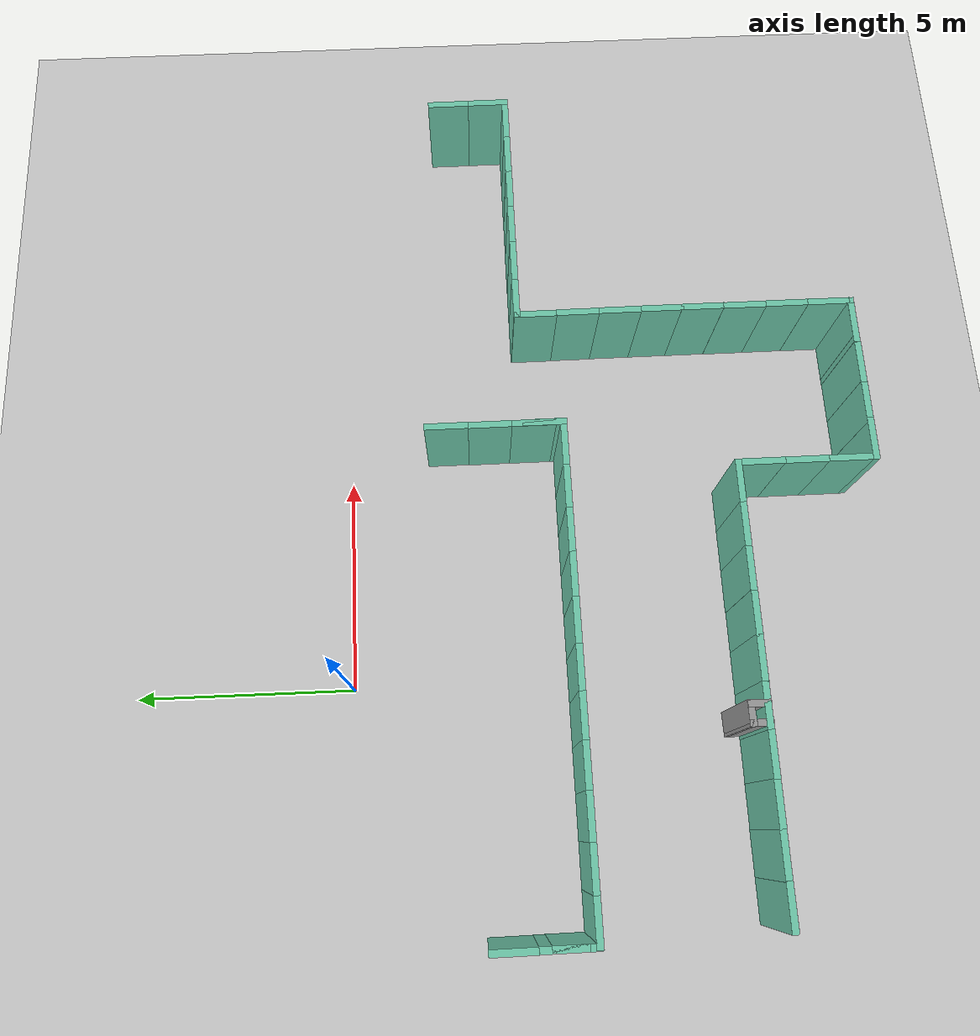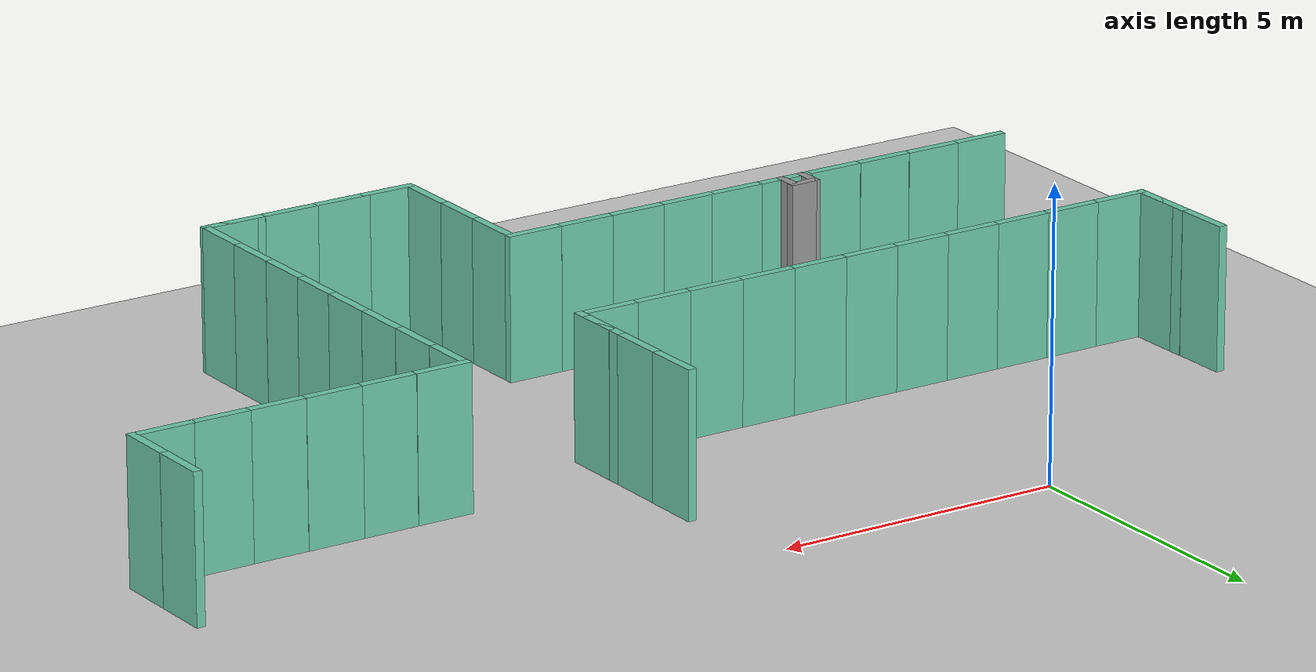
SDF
<sdf version="1.6">
 <world name="default">
  <model name="ground_plane">
   <static>1</static>
   <link name="link">
    <collision name="collision">
     <geometry><plane><normal>0 0 1</normal><size>100 100</size></plane></geometry>
     <surface><friction><ode><mu>100</mu><mu2>50</mu2></ode></friction></surface>
    </collision>
    <visual name="visual">
     <cast_shadows>0</cast_shadows>
     <geometry><plane><normal>0 0 1</normal><size>100 100</size></plane></geometry>
     <material>
      <script><uri>file://media/materials/scripts/gazebo.material</uri><name>Gazebo/Grey</name></script>
     </material>
    </visual>
   </link>
  </model>
  <model name="wall1m_0">
   <pose>5 -5 0 0 -0 0</pose>
   <link name="Wall_2">
    <collision name="Wall_2_Collision">
     <geometry><box><size>1 0.15 2.5</size></box></geometry>
     <pose>0 0 1.25 0 -0 0</pose>
    </collision>
    <visual name="Wall_2_Visual">
     <pose>0 0 1.25 0 -0 0</pose>
     <geometry><box><size>1 0.15 2.5</size></box></geometry>
     <material>
      <script><uri>file://media/materials/scripts/gazebo.material</uri><name>Gazebo/Grey</name></script>
      <ambient>0.435294 0.796078 0.67451 1</ambient>
     </material>
     <meta><layer>0</layer></meta>
    </visual>
   </link>
   <static>1</static>
  </model>
  <model name="wall1m_0_clone">
   <pose>-2 -5 0 0 -0 0</pose>
   <link name="Wall_2">
    <collision name="Wall_2_Collision">
     <geometry><box><size>1 0.15 2.5</size></box></geometry>
     <pose>0 0 1.25 0 -0 0</pose>
    </collision>
    <visual name="Wall_2_Visual">
     <pose>0 0 1.25 0 -0 0</pose>
     <geometry><box><size>1 0.15 2.5</size></box></geometry>
     <material>
      <script><uri>file://media/materials/scripts/gazebo.material</uri><name>Gazebo/Grey</name></script>
      <ambient>0.435294 0.796078 0.67451 1</ambient>
     </material>
     <meta><layer>0</layer></meta>
    </visual>
   </link>
   <static>1</static>
  </model>
  <model name="wall1m_0_clone_0">
   <pose>-1 -5 0 0 -0 0</pose>
   <link name="Wall_2">
    <collision name="Wall_2_Collision">
     <geometry><box><size>1 0.15 2.5</size></box></geometry>
     <pose>0 0 1.25 0 -0 0</pose>
    </collision>
    <visual name="Wall_2_Visual">
     <pose>0 0 1.25 0 -0 0</pose>
     <geometry><box><size>1 0.15 2.5</size></box></geometry>
     <material>
      <script><uri>file://media/materials/scripts/gazebo.material</uri><name>Gazebo/Grey</name></script>
      <ambient>0.435294 0.796078 0.67451 1</ambient>
     </material>
     <meta><layer>0</layer></meta>
    </visual>
   </link>
   <static>1</static>
  </model>
  <model name="wall1m_0_clone_1">
   <pose>0 -5 0 0 -0 0</pose>
   <link name="Wall_2">
    <collision name="Wall_2_Collision">
     <geometry><box><size>1 0.15 2.5</size></box></geometry>
     <pose>0 0 1.25 0 -0 0</pose>
    </collision>
    <visual name="Wall_2_Visual">
     <pose>0 0 1.25 0 -0 0</pose>
     <geometry><box><size>1 0.15 2.5</size></box></geometry>
     <material>
      <script><uri>file://media/materials/scripts/gazebo.material</uri><name>Gazebo/Grey</name></script>
      <ambient>0.435294 0.796078 0.67451 1</ambient>
     </material>
     <meta><layer>0</layer></meta>
    </visual>
   </link>
   <static>1</static>
  </model>
  <model name="wall1m_0_clone_2">
   <pose>1 -5 0 0 -0 0</pose>
   <link name="Wall_2">
    <collision name="Wall_2_Collision">
     <geometry><box><size>1 0.15 2.5</size></box></geometry>
     <pose>0 0 1.25 0 -0 0</pose>
    </collision>
    <visual name="Wall_2_Visual">
     <pose>0 0 1.25 0 -0 0</pose>
     <geometry><box><size>1 0.15 2.5</size></box></geometry>
     <material>
      <script><uri>file://media/materials/scripts/gazebo.material</uri><name>Gazebo/Grey</name></script>
      <ambient>0.435294 0.796078 0.67451 1</ambient>
     </material>
     <meta><layer>0</layer></meta>
    </visual>
   </link>
   <static>1</static>
  </model>
  <model name="wall1m_0_clone_3">
   <pose>2 -5 0 0 -0 0</pose>
   <link name="Wall_2">
    <collision name="Wall_2_Collision">
     <geometry><box><size>1 0.15 2.5</size></box></geometry>
     <pose>0 0 1.25 0 -0 0</pose>
    </collision>
    <visual name="Wall_2_Visual">
     <pose>0 0 1.25 0 -0 0</pose>
     <geometry><box><size>1 0.15 2.5</size></box></geometry>
     <material>
      <script><uri>file://media/materials/scripts/gazebo.material</uri><name>Gazebo/Grey</name></script>
      <ambient>0.435294 0.796078 0.67451 1</ambient>
     </material>
     <meta><layer>0</layer></meta>
    </visual>
   </link>
   <static>1</static>
  </model>
  <model name="wall1m_0_clone_4">
   <pose>3 -5 0 0 -0 0</pose>
   <link name="Wall_2">
    <collision name="Wall_2_Collision">
     <geometry><box><size>1 0.15 2.5</size></box></geometry>
     <pose>0 0 1.25 0 -0 0</pose>
    </collision>
    <visual name="Wall_2_Visual">
     <pose>0 0 1.25 0 -0 0</pose>
     <geometry><box><size>1 0.15 2.5</size></box></geometry>
     <material>
      <script><uri>file://media/materials/scripts/gazebo.material</uri><name>Gazebo/Grey</name></script>
      <ambient>0.435294 0.796078 0.67451 1</ambient>
     </material>
     <meta><layer>0</layer></meta>
    </visual>
   </link>
   <static>1</static>
  </model>
  <model name="wall1m_0_clone_5">
   <pose>4 -5 0 0 -0 0</pose>
   <link name="Wall_2">
    <collision name="Wall_2_Collision">
     <geometry><box><size>1 0.15 2.5</size></box></geometry>
     <pose>0 0 1.25 0 -0 0</pose>
    </collision>
    <visual name="Wall_2_Visual">
     <pose>0 0 1.25 0 -0 0</pose>
     <geometry><box><size>1 0.15 2.5</size></box></geometry>
     <material>
      <script><uri>file://media/materials/scripts/gazebo.material</uri><name>Gazebo/Grey</name></script>
      <ambient>0.435294 0.796078 0.67451 1</ambient>
     </material>
     <meta><layer>0</layer></meta>
    </visual>
   </link>
   <static>1</static>
  </model>
  <model name="wall1m_0_clone_6">
   <pose>-3 -5 0 0 -0 0</pose>
   <link name="Wall_2">
    <collision name="Wall_2_Collision">
     <geometry><box><size>1 0.15 2.5</size></box></geometry>
     <pose>0 0 1.25 0 -0 0</pose>
    </collision>
    <visual name="Wall_2_Visual">
     <pose>0 0 1.25 0 -0 0</pose>
     <geometry><box><size>1 0.15 2.5</size></box></geometry>
     <material>
      <script><uri>file://media/materials/scripts/gazebo.material</uri><name>Gazebo/Grey</name></script>
      <ambient>0.435294 0.796078 0.67451 1</ambient>
     </material>
     <meta><layer>0</layer></meta>
    </visual>
   </link>
   <static>1</static>
  </model>
  <model name="wall1m_0_clone_7">
   <pose>-4 -5 0 0 -0 0</pose>
   <link name="Wall_2">
    <collision name="Wall_2_Collision">
     <geometry><box><size>1 0.15 2.5</size></box></geometry>
     <pose>0 0 1.25 0 -0 0</pose>
    </collision>
    <visual name="Wall_2_Visual">
     <pose>0 0 1.25 0 -0 0</pose>
     <geometry><box><size>1 0.15 2.5</size></box></geometry>
     <material>
      <script><uri>file://media/materials/scripts/gazebo.material</uri><name>Gazebo/Grey</name></script>
      <ambient>0.435294 0.796078 0.67451 1</ambient>
     </material>
     <meta><layer>0</layer></meta>
    </visual>
   </link>
   <static>1</static>
  </model>
  <model name="wall1m_0_clone_8">
   <pose>-5 -5 0 0 -0 0</pose>
   <link name="Wall_2">
    <collision name="Wall_2_Collision">
     <geometry><box><size>1 0.15 2.5</size></box></geometry>
     <pose>0 0 1.25 0 -0 0</pose>
    </collision>
    <visual name="Wall_2_Visual">
     <pose>0 0 1.25 0 -0 0</pose>
     <geometry><box><size>1 0.15 2.5</size></box></geometry>
     <material>
      <script><uri>file://media/materials/scripts/gazebo.material</uri><name>Gazebo/Grey</name></script>
      <ambient>0.435294 0.796078 0.67451 1</ambient>
     </material>
     <meta><layer>0</layer></meta>
    </visual>
   </link>
   <static>1</static>
  </model>
  <model name="wall1m_0_clone_8_clone_9_clone_clone_18">
   <pose>-5.46314 -3.32192 0 0 0 -1.56</pose>
   <link name="Wall_2">
    <collision name="Wall_2_Collision">
     <geometry><box><size>1 0.15 2.5</size></box></geometry>
     <pose>0 0 1.25 0 -0 0</pose>
    </collision>
    <visual name="Wall_2_Visual">
     <pose>0 0 1.25 0 -0 0</pose>
     <geometry><box><size>1 0.15 2.5</size></box></geometry>
     <material>
      <script><uri>file://media/materials/scripts/gazebo.material</uri><name>Gazebo/Grey</name></script>
      <ambient>0.435294 0.796078 0.67451 1</ambient>
     </material>
     <meta><layer>0</layer></meta>
    </visual>
   </link>
   <static>1</static>
  </model>
  <model name="wall1m_0_clone_8_clone_9_clone_clone_19">
   <pose>-5.44807 -4.30765 0 0 0 -1.56</pose>
   <link name="Wall_2">
    <collision name="Wall_2_Collision">
     <geometry><box><size>1 0.15 2.5</size></box></geometry>
     <pose>0 0 1.25 0 -0 0</pose>
    </collision>
    <visual name="Wall_2_Visual">
     <pose>0 0 1.25 0 -0 0</pose>
     <geometry><box><size>1 0.15 2.5</size></box></geometry>
     <material>
      <script><uri>file://media/materials/scripts/gazebo.material</uri><name>Gazebo/Grey</name></script>
      <ambient>0.435294 0.796078 0.67451 1</ambient>
     </material>
     <meta><layer>0</layer></meta>
    </visual>
   </link>
   <static>1</static>
  </model>
  <model name="wall1m_0_clone_8_clone_9_clone_clone_20">
   <pose>-5.44478 -4.56506 0 0 0 -1.56</pose>
   <link name="Wall_2">
    <collision name="Wall_2_Collision">
     <geometry><box><size>1 0.15 2.5</size></box></geometry>
     <pose>0 0 1.25 0 -0 0</pose>
    </collision>
    <visual name="Wall_2_Visual">
     <pose>0 0 1.25 0 -0 0</pose>
     <geometry><box><size>1 0.15 2.5</size></box></geometry>
     <material>
      <script><uri>file://media/materials/scripts/gazebo.material</uri><name>Gazebo/Grey</name></script>
      <ambient>0.435294 0.796078 0.67451 1</ambient>
     </material>
     <meta><layer>0</layer></meta>
    </visual>
   </link>
   <static>1</static>
  </model>
  <model name="wall1m_0_clone_8_clone_9_clone_clone_5">
   <pose>5.51731 -2.34517 0 0 0 -1.5658</pose>
   <link name="Wall_2">
    <collision name="Wall_2_Collision">
     <geometry><box><size>1 0.15 2.5</size></box></geometry>
     <pose>0 0 1.25 0 -0 0</pose>
    </collision>
    <visual name="Wall_2_Visual">
     <pose>0 0 1.25 0 -0 0</pose>
     <geometry><box><size>1 0.15 2.5</size></box></geometry>
     <material>
      <script><uri>file://media/materials/scripts/gazebo.material</uri><name>Gazebo/Grey</name></script>
      <ambient>0.435294 0.796078 0.67451 1</ambient>
     </material>
     <meta><layer>0</layer></meta>
    </visual>
   </link>
   <static>1</static>
  </model>
  <model name="wall1m_0_clone_8_clone_9_clone_clone_29">
   <pose>5.51653 -3.34003 0 0 0 -1.5658</pose>
   <link name="Wall_2">
    <collision name="Wall_2_Collision">
     <geometry><box><size>1 0.15 2.5</size></box></geometry>
     <pose>0 0 1.25 0 -0 0</pose>
    </collision>
    <visual name="Wall_2_Visual">
     <pose>0 0 1.25 0 -0 0</pose>
     <geometry><box><size>1 0.15 2.5</size></box></geometry>
     <material>
      <script><uri>file://media/materials/scripts/gazebo.material</uri><name>Gazebo/Grey</name></script>
      <ambient>0.435294 0.796078 0.67451 1</ambient>
     </material>
     <meta><layer>0</layer></meta>
    </visual>
   </link>
   <static>1</static>
  </model>
  <model name="wall1m_0_clone_8_clone_9_clone_clone_6">
   <pose>5.52059 -4.33385 0 0 0 -1.5658</pose>
   <link name="Wall_2">
    <collision name="Wall_2_Collision">
     <geometry><box><size>1 0.15 2.5</size></box></geometry>
     <pose>0 0 1.25 0 -0 0</pose>
    </collision>
    <visual name="Wall_2_Visual">
     <pose>0 0 1.25 0 -0 0</pose>
     <geometry><box><size>1 0.15 2.5</size></box></geometry>
     <material>
      <script><uri>file://media/materials/scripts/gazebo.material</uri><name>Gazebo/Grey</name></script>
      <ambient>0.435294 0.796078 0.67451 1</ambient>
     </material>
     <meta><layer>0</layer></meta>
    </visual>
   </link>
   <static>1</static>
  </model>
  <model name="wall1m_0_clone_8_clone_9_clone_clone_7">
   <pose>5.52696 -4.57842 0 0 0 -1.5658</pose>
   <link name="Wall_2">
    <collision name="Wall_2_Collision">
     <geometry><box><size>1 0.15 2.5</size></box></geometry>
     <pose>0 0 1.25 0 -0 0</pose>
    </collision>
    <visual name="Wall_2_Visual">
     <pose>0 0 1.25 0 -0 0</pose>
     <geometry><box><size>1 0.15 2.5</size></box></geometry>
     <material>
      <script><uri>file://media/materials/scripts/gazebo.material</uri><name>Gazebo/Grey</name></script>
      <ambient>0.435294 0.796078 0.67451 1</ambient>
     </material>
     <meta><layer>0</layer></meta>
    </visual>
   </link>
   <static>1</static>
  </model>
  <model name="wall1m_0_clone_8_clone_9_clone_3">
   <pose>8.66311 -4.08501 0 0 -0 0</pose>
   <link name="Wall_2">
    <collision name="Wall_2_Collision">
     <geometry><box><size>1 0.15 2.5</size></box></geometry>
     <pose>0 0 1.25 0 -0 0</pose>
    </collision>
    <visual name="Wall_2_Visual">
     <pose>0 0 1.25 0 -0 0</pose>
     <geometry><box><size>1 0.15 2.5</size></box></geometry>
     <material>
      <script><uri>file://media/materials/scripts/gazebo.material</uri><name>Gazebo/Grey</name></script>
      <ambient>0.435294 0.796078 0.67451 1</ambient>
     </material>
     <meta><layer>0</layer></meta>
    </visual>
   </link>
   <static>1</static>
  </model>
  <model name="wall1m_0_clone_8_clone_9_clone_5">
   <pose>9.66662 -4.08585 0 0 -0 0</pose>
   <link name="Wall_2">
    <collision name="Wall_2_Collision">
     <geometry><box><size>1 0.15 2.5</size></box></geometry>
     <pose>0 0 1.25 0 -0 0</pose>
    </collision>
    <visual name="Wall_2_Visual">
     <pose>0 0 1.25 0 -0 0</pose>
     <geometry><box><size>1 0.15 2.5</size></box></geometry>
     <material>
      <script><uri>file://media/materials/scripts/gazebo.material</uri><name>Gazebo/Grey</name></script>
      <ambient>0.435294 0.796078 0.67451 1</ambient>
     </material>
     <meta><layer>0</layer></meta>
    </visual>
   </link>
   <static>1</static>
  </model>
  <model name="wall1m_0_clone_8_clone_9_clone_6">
   <pose>10.6427 -4.08332 0 0 -0 0</pose>
   <link name="Wall_2">
    <collision name="Wall_2_Collision">
     <geometry><box><size>1 0.15 2.5</size></box></geometry>
     <pose>0 0 1.25 0 -0 0</pose>
    </collision>
    <visual name="Wall_2_Visual">
     <pose>0 0 1.25 0 -0 0</pose>
     <geometry><box><size>1 0.15 2.5</size></box></geometry>
     <material>
      <script><uri>file://media/materials/scripts/gazebo.material</uri><name>Gazebo/Grey</name></script>
      <ambient>0.435294 0.796078 0.67451 1</ambient>
     </material>
     <meta><layer>0</layer></meta>
    </visual>
   </link>
   <static>1</static>
  </model>
  <model name="wall1m_0_clone_8_clone_9_clone_7">
   <pose>11.6358 -4.08761 0 0 -0 0</pose>
   <link name="Wall_2">
    <collision name="Wall_2_Collision">
     <geometry><box><size>1 0.15 2.5</size></box></geometry>
     <pose>0 0 1.25 0 -0 0</pose>
    </collision>
    <visual name="Wall_2_Visual">
     <pose>0 0 1.25 0 -0 0</pose>
     <geometry><box><size>1 0.15 2.5</size></box></geometry>
     <material>
      <script><uri>file://media/materials/scripts/gazebo.material</uri><name>Gazebo/Grey</name></script>
      <ambient>0.435294 0.796078 0.67451 1</ambient>
     </material>
     <meta><layer>0</layer></meta>
    </visual>
   </link>
   <static>1</static>
  </model>
  <model name="wall1m_0_clone_8_clone_9_clone_clone_29_clone">
   <pose>8.23885 -4.52024 0 0 0 -1.5658</pose>
   <link name="Wall_2">
    <collision name="Wall_2_Collision">
     <geometry><box><size>1 0.15 2.5</size></box></geometry>
     <pose>0 0 1.25 0 -0 0</pose>
    </collision>
    <visual name="Wall_2_Visual">
     <pose>0 0 1.25 0 -0 0</pose>
     <geometry><box><size>1 0.15 2.5</size></box></geometry>
     <material>
      <script><uri>file://media/materials/scripts/gazebo.material</uri><name>Gazebo/Grey</name></script>
      <ambient>0.435294 0.796078 0.67451 1</ambient>
     </material>
     <meta><layer>0</layer></meta>
    </visual>
   </link>
   <static>1</static>
  </model>
  <model name="wall1m_0_clone_8_clone_9_clone_clone_29_clone_0">
   <pose>8.25051 -5.51332 0 0 0 -1.5658</pose>
   <link name="Wall_2">
    <collision name="Wall_2_Collision">
     <geometry><box><size>1 0.15 2.5</size></box></geometry>
     <pose>0 0 1.25 0 -0 0</pose>
    </collision>
    <visual name="Wall_2_Visual">
     <pose>0 0 1.25 0 -0 0</pose>
     <geometry><box><size>1 0.15 2.5</size></box></geometry>
     <material>
      <script><uri>file://media/materials/scripts/gazebo.material</uri><name>Gazebo/Grey</name></script>
      <ambient>0.435294 0.796078 0.67451 1</ambient>
     </material>
     <meta><layer>0</layer></meta>
    </visual>
   </link>
   <static>1</static>
  </model>
  <model name="wall1m_0_clone_8_clone_9_clone_clone_29_clone_1">
   <pose>8.26143 -6.50242 0 0 0 -1.5658</pose>
   <link name="Wall_2">
    <collision name="Wall_2_Collision">
     <geometry><box><size>1 0.15 2.5</size></box></geometry>
     <pose>0 0 1.25 0 -0 0</pose>
    </collision>
    <visual name="Wall_2_Visual">
     <pose>0 0 1.25 0 -0 0</pose>
     <geometry><box><size>1 0.15 2.5</size></box></geometry>
     <material>
      <script><uri>file://media/materials/scripts/gazebo.material</uri><name>Gazebo/Grey</name></script>
      <ambient>0.435294 0.796078 0.67451 1</ambient>
     </material>
     <meta><layer>0</layer></meta>
    </visual>
   </link>
   <static>1</static>
  </model>
  <model name="wall1m_0_clone_8_clone_9_clone_clone_29_clone_2">
   <pose>8.26808 -7.50011 0 0 0 -1.5658</pose>
   <link name="Wall_2">
    <collision name="Wall_2_Collision">
     <geometry><box><size>1 0.15 2.5</size></box></geometry>
     <pose>0 0 1.25 0 -0 0</pose>
    </collision>
    <visual name="Wall_2_Visual">
     <pose>0 0 1.25 0 -0 0</pose>
     <geometry><box><size>1 0.15 2.5</size></box></geometry>
     <material>
      <script><uri>file://media/materials/scripts/gazebo.material</uri><name>Gazebo/Grey</name></script>
      <ambient>0.435294 0.796078 0.67451 1</ambient>
     </material>
     <meta><layer>0</layer></meta>
    </visual>
   </link>
   <static>1</static>
  </model>
  <model name="wall1m_0_clone_8_clone_9_clone_clone_29_clone_3">
   <pose>8.27247 -8.44744 0 0 0 -1.5658</pose>
   <link name="Wall_2">
    <collision name="Wall_2_Collision">
     <geometry><box><size>1 0.15 2.5</size></box></geometry>
     <pose>0 0 1.25 0 -0 0</pose>
    </collision>
    <visual name="Wall_2_Visual">
     <pose>0 0 1.25 0 -0 0</pose>
     <geometry><box><size>1 0.15 2.5</size></box></geometry>
     <material>
      <script><uri>file://media/materials/scripts/gazebo.material</uri><name>Gazebo/Grey</name></script>
      <ambient>0.435294 0.796078 0.67451 1</ambient>
     </material>
     <meta><layer>0</layer></meta>
    </visual>
   </link>
   <static>1</static>
  </model>
  <model name="wall1m_0_clone_8_clone_9_clone_clone_29_clone_4">
   <pose>8.27235 -9.43058 0 0 0 -1.5658</pose>
   <link name="Wall_2">
    <collision name="Wall_2_Collision">
     <geometry><box><size>1 0.15 2.5</size></box></geometry>
     <pose>0 0 1.25 0 -0 0</pose>
    </collision>
    <visual name="Wall_2_Visual">
     <pose>0 0 1.25 0 -0 0</pose>
     <geometry><box><size>1 0.15 2.5</size></box></geometry>
     <material>
      <script><uri>file://media/materials/scripts/gazebo.material</uri><name>Gazebo/Grey</name></script>
      <ambient>0.435294 0.796078 0.67451 1</ambient>
     </material>
     <meta><layer>0</layer></meta>
    </visual>
   </link>
   <static>1</static>
  </model>
  <model name="wall1m_0_clone_8_clone_14">
   <pose>-4.88012 -8.82599 0 0 -0 0</pose>
   <link name="Wall_2">
    <collision name="Wall_2_Collision">
     <geometry><box><size>1 0.15 2.5</size></box></geometry>
     <pose>0 0 1.25 0 -0 0</pose>
    </collision>
    <visual name="Wall_2_Visual">
     <pose>0 0 1.25 0 -0 0</pose>
     <geometry><box><size>1 0.15 2.5</size></box></geometry>
     <material>
      <script><uri>file://media/materials/scripts/gazebo.material</uri><name>Gazebo/Grey</name></script>
      <ambient>0.435294 0.796078 0.67451 1</ambient>
     </material>
     <meta><layer>0</layer></meta>
    </visual>
   </link>
   <static>1</static>
  </model>
  <model name="wall1m_0_clone_8_clone_15">
   <pose>-3.91236 -8.82583 0 0 -0 0</pose>
   <link name="Wall_2">
    <collision name="Wall_2_Collision">
     <geometry><box><size>1 0.15 2.5</size></box></geometry>
     <pose>0 0 1.25 0 -0 0</pose>
    </collision>
    <visual name="Wall_2_Visual">
     <pose>0 0 1.25 0 -0 0</pose>
     <geometry><box><size>1 0.15 2.5</size></box></geometry>
     <material>
      <script><uri>file://media/materials/scripts/gazebo.material</uri><name>Gazebo/Grey</name></script>
      <ambient>0.435294 0.796078 0.67451 1</ambient>
     </material>
     <meta><layer>0</layer></meta>
    </visual>
   </link>
   <static>1</static>
  </model>
  <model name="wall1m_0_clone_8_clone_16">
   <pose>-2.93089 -8.83305 0 0 -0 0</pose>
   <link name="Wall_2">
    <collision name="Wall_2_Collision">
     <geometry><box><size>1 0.15 2.5</size></box></geometry>
     <pose>0 0 1.25 0 -0 0</pose>
    </collision>
    <visual name="Wall_2_Visual">
     <pose>0 0 1.25 0 -0 0</pose>
     <geometry><box><size>1 0.15 2.5</size></box></geometry>
     <material>
      <script><uri>file://media/materials/scripts/gazebo.material</uri><name>Gazebo/Grey</name></script>
      <ambient>0.435294 0.796078 0.67451 1</ambient>
     </material>
     <meta><layer>0</layer></meta>
    </visual>
   </link>
   <static>1</static>
  </model>
  <model name="wall1m_0_clone_8_clone_17">
   <pose>-1.94934 -8.83782 0 0 -0 0</pose>
   <link name="Wall_2">
    <collision name="Wall_2_Collision">
     <geometry><box><size>1 0.15 2.5</size></box></geometry>
     <pose>0 0 1.25 0 -0 0</pose>
    </collision>
    <visual name="Wall_2_Visual">
     <pose>0 0 1.25 0 -0 0</pose>
     <geometry><box><size>1 0.15 2.5</size></box></geometry>
     <material>
      <script><uri>file://media/materials/scripts/gazebo.material</uri><name>Gazebo/Grey</name></script>
      <ambient>0.435294 0.796078 0.67451 1</ambient>
     </material>
     <meta><layer>0</layer></meta>
    </visual>
   </link>
   <static>1</static>
  </model>
  <model name="wall1m_0_clone_8_clone_18">
   <pose>-0.959524 -8.83316 0 0 -0 0</pose>
   <link name="Wall_2">
    <collision name="Wall_2_Collision">
     <geometry><box><size>1 0.15 2.5</size></box></geometry>
     <pose>0 0 1.25 0 -0 0</pose>
    </collision>
    <visual name="Wall_2_Visual">
     <pose>0 0 1.25 0 -0 0</pose>
     <geometry><box><size>1 0.15 2.5</size></box></geometry>
     <material>
      <script><uri>file://media/materials/scripts/gazebo.material</uri><name>Gazebo/Grey</name></script>
      <ambient>0.435294 0.796078 0.67451 1</ambient>
     </material>
     <meta><layer>0</layer></meta>
    </visual>
   </link>
   <static>1</static>
  </model>
  <model name="wall1m_0_clone_8_clone_19">
   <pose>0.02908 -8.83731 0 0 -0 0</pose>
   <link name="Wall_2">
    <collision name="Wall_2_Collision">
     <geometry><box><size>1 0.15 2.5</size></box></geometry>
     <pose>0 0 1.25 0 -0 0</pose>
    </collision>
    <visual name="Wall_2_Visual">
     <pose>0 0 1.25 0 -0 0</pose>
     <geometry><box><size>1 0.15 2.5</size></box></geometry>
     <material>
      <script><uri>file://media/materials/scripts/gazebo.material</uri><name>Gazebo/Grey</name></script>
      <ambient>0.435294 0.796078 0.67451 1</ambient>
     </material>
     <meta><layer>0</layer></meta>
    </visual>
   </link>
   <static>1</static>
  </model>
  <model name="wall1m_0_clone_8_clone_20">
   <pose>0.984164 -8.83908 0 0 -0 0</pose>
   <link name="Wall_2">
    <collision name="Wall_2_Collision">
     <geometry><box><size>1 0.15 2.5</size></box></geometry>
     <pose>0 0 1.25 0 -0 0</pose>
    </collision>
    <visual name="Wall_2_Visual">
     <pose>0 0 1.25 0 -0 0</pose>
     <geometry><box><size>1 0.15 2.5</size></box></geometry>
     <material>
      <script><uri>file://media/materials/scripts/gazebo.material</uri><name>Gazebo/Grey</name></script>
      <ambient>0.435294 0.796078 0.67451 1</ambient>
     </material>
     <meta><layer>0</layer></meta>
    </visual>
   </link>
   <static>1</static>
  </model>
  <model name="wall1m_0_clone_8_clone_21">
   <pose>1.97449 -8.83277 0 0 -0 0</pose>
   <link name="Wall_2">
    <collision name="Wall_2_Collision">
     <geometry><box><size>1 0.15 2.5</size></box></geometry>
     <pose>0 0 1.25 0 -0 0</pose>
    </collision>
    <visual name="Wall_2_Visual">
     <pose>0 0 1.25 0 -0 0</pose>
     <geometry><box><size>1 0.15 2.5</size></box></geometry>
     <material>
      <script><uri>file://media/materials/scripts/gazebo.material</uri><name>Gazebo/Grey</name></script>
      <ambient>0.435294 0.796078 0.67451 1</ambient>
     </material>
     <meta><layer>0</layer></meta>
    </visual>
   </link>
   <static>1</static>
  </model>
  <model name="wall1m_0_clone_8_clone_22">
   <pose>2.96583 -8.83457 0 0 -0 0</pose>
   <link name="Wall_2">
    <collision name="Wall_2_Collision">
     <geometry><box><size>1 0.15 2.5</size></box></geometry>
     <pose>0 0 1.25 0 -0 0</pose>
    </collision>
    <visual name="Wall_2_Visual">
     <pose>0 0 1.25 0 -0 0</pose>
     <geometry><box><size>1 0.15 2.5</size></box></geometry>
     <material>
      <script><uri>file://media/materials/scripts/gazebo.material</uri><name>Gazebo/Grey</name></script>
      <ambient>0.435294 0.796078 0.67451 1</ambient>
     </material>
     <meta><layer>0</layer></meta>
    </visual>
   </link>
   <static>1</static>
  </model>
  <model name="wall1m_0_clone_8_clone_23">
   <pose>3.96409 -8.83581 0 0 -0 0</pose>
   <link name="Wall_2">
    <collision name="Wall_2_Collision">
     <geometry><box><size>1 0.15 2.5</size></box></geometry>
     <pose>0 0 1.25 0 -0 0</pose>
    </collision>
    <visual name="Wall_2_Visual">
     <pose>0 0 1.25 0 -0 0</pose>
     <geometry><box><size>1 0.15 2.5</size></box></geometry>
     <material>
      <script><uri>file://media/materials/scripts/gazebo.material</uri><name>Gazebo/Grey</name></script>
      <ambient>0.435294 0.796078 0.67451 1</ambient>
     </material>
     <meta><layer>0</layer></meta>
    </visual>
   </link>
   <static>1</static>
  </model>
  <model name="wall1m_0_clone_8_clone_9_clone_clone_29_clone_4_clone">
   <pose>4.39059 -9.39765 0 0 0 -1.5658</pose>
   <link name="Wall_2">
    <collision name="Wall_2_Collision">
     <geometry><box><size>1 0.15 2.5</size></box></geometry>
     <pose>0 0 1.25 0 -0 0</pose>
    </collision>
    <visual name="Wall_2_Visual">
     <pose>0 0 1.25 0 -0 0</pose>
     <geometry><box><size>1 0.15 2.5</size></box></geometry>
     <material>
      <script><uri>file://media/materials/scripts/gazebo.material</uri><name>Gazebo/Grey</name></script>
      <ambient>0.435294 0.796078 0.67451 1</ambient>
     </material>
     <meta><layer>0</layer></meta>
    </visual>
   </link>
   <static>1</static>
  </model>
  <model name="wall1m_0_clone_8_clone_9_clone_clone_29_clone_4_clone_0">
   <pose>4.39397 -10.3733 0 0 0 -1.5658</pose>
   <link name="Wall_2">
    <collision name="Wall_2_Collision">
     <geometry><box><size>1 0.15 2.5</size></box></geometry>
     <pose>0 0 1.25 0 -0 0</pose>
    </collision>
    <visual name="Wall_2_Visual">
     <pose>0 0 1.25 0 -0 0</pose>
     <geometry><box><size>1 0.15 2.5</size></box></geometry>
     <material>
      <script><uri>file://media/materials/scripts/gazebo.material</uri><name>Gazebo/Grey</name></script>
      <ambient>0.435294 0.796078 0.67451 1</ambient>
     </material>
     <meta><layer>0</layer></meta>
    </visual>
   </link>
   <static>1</static>
  </model>
  <model name="wall1m_0_clone_8_clone_9_clone_clone_29_clone_4_clone_1">
   <pose>4.39996 -11.3606 0 0 0 -1.5658</pose>
   <link name="Wall_2">
    <collision name="Wall_2_Collision">
     <geometry><box><size>1 0.15 2.5</size></box></geometry>
     <pose>0 0 1.25 0 -0 0</pose>
    </collision>
    <visual name="Wall_2_Visual">
     <pose>0 0 1.25 0 -0 0</pose>
     <geometry><box><size>1 0.15 2.5</size></box></geometry>
     <material>
      <script><uri>file://media/materials/scripts/gazebo.material</uri><name>Gazebo/Grey</name></script>
      <ambient>0.435294 0.796078 0.67451 1</ambient>
     </material>
     <meta><layer>0</layer></meta>
    </visual>
   </link>
   <static>1</static>
  </model>
  <model name="wall1m_0_clone_8_clone_9_clone_clone_29_clone_4_clone_2">
   <pose>8.27909 -10.4242 0 0 0 -1.5658</pose>
   <link name="Wall_2">
    <collision name="Wall_2_Collision">
     <geometry><box><size>1 0.15 2.5</size></box></geometry>
     <pose>0 0 1.25 0 -0 0</pose>
    </collision>
    <visual name="Wall_2_Visual">
     <pose>0 0 1.25 0 -0 0</pose>
     <geometry><box><size>1 0.15 2.5</size></box></geometry>
     <material>
      <script><uri>file://media/materials/scripts/gazebo.material</uri><name>Gazebo/Grey</name></script>
      <ambient>0.435294 0.796078 0.67451 1</ambient>
     </material>
     <meta><layer>0</layer></meta>
    </visual>
   </link>
   <static>1</static>
  </model>
  <model name="wall1m_0_clone_8_clone_9_clone_clone_29_clone_4_clone_3">
   <pose>8.28087 -11.4157 0 0 0 -1.5658</pose>
   <link name="Wall_2">
    <collision name="Wall_2_Collision">
     <geometry><box><size>1 0.15 2.5</size></box></geometry>
     <pose>0 0 1.25 0 -0 0</pose>
    </collision>
    <visual name="Wall_2_Visual">
     <pose>0 0 1.25 0 -0 0</pose>
     <geometry><box><size>1 0.15 2.5</size></box></geometry>
     <material>
      <script><uri>file://media/materials/scripts/gazebo.material</uri><name>Gazebo/Grey</name></script>
      <ambient>0.435294 0.796078 0.67451 1</ambient>
     </material>
     <meta><layer>0</layer></meta>
    </visual>
   </link>
   <static>1</static>
  </model>
  <model name="wall1m_0_clone_8_clone_23_clone">
   <pose>4.83039 -11.9338 0 0 -0 0</pose>
   <link name="Wall_2">
    <collision name="Wall_2_Collision">
     <geometry><box><size>1 0.15 2.5</size></box></geometry>
     <pose>0 0 1.25 0 -0 0</pose>
    </collision>
    <visual name="Wall_2_Visual">
     <pose>0 0 1.25 0 -0 0</pose>
     <geometry><box><size>1 0.15 2.5</size></box></geometry>
     <material>
      <script><uri>file://media/materials/scripts/gazebo.material</uri><name>Gazebo/Grey</name></script>
      <ambient>0.435294 0.796078 0.67451 1</ambient>
     </material>
     <meta><layer>0</layer></meta>
    </visual>
   </link>
   <static>1</static>
  </model>
  <model name="wall1m_0_clone_8_clone_23_clone_0">
   <pose>5.71406 -11.9304 0 0 -0 0</pose>
   <link name="Wall_2">
    <collision name="Wall_2_Collision">
     <geometry><box><size>1 0.15 2.5</size></box></geometry>
     <pose>0 0 1.25 0 -0 0</pose>
    </collision>
    <visual name="Wall_2_Visual">
     <pose>0 0 1.25 0 -0 0</pose>
     <geometry><box><size>1 0.15 2.5</size></box></geometry>
     <material>
      <script><uri>file://media/materials/scripts/gazebo.material</uri><name>Gazebo/Grey</name></script>
      <ambient>0.435294 0.796078 0.67451 1</ambient>
     </material>
     <meta><layer>0</layer></meta>
    </visual>
   </link>
   <static>1</static>
  </model>
  <model name="wall1m_0_clone_8_clone_23_clone_1">
   <pose>6.70638 -11.9267 0 0 -0 0</pose>
   <link name="Wall_2">
    <collision name="Wall_2_Collision">
     <geometry><box><size>1 0.15 2.5</size></box></geometry>
     <pose>0 0 1.25 0 -0 0</pose>
    </collision>
    <visual name="Wall_2_Visual">
     <pose>0 0 1.25 0 -0 0</pose>
     <geometry><box><size>1 0.15 2.5</size></box></geometry>
     <material>
      <script><uri>file://media/materials/scripts/gazebo.material</uri><name>Gazebo/Grey</name></script>
      <ambient>0.435294 0.796078 0.67451 1</ambient>
     </material>
     <meta><layer>0</layer></meta>
    </visual>
   </link>
   <static>1</static>
  </model>
  <model name="wall1m_0_clone_8_clone_23_clone_2">
   <pose>7.70976 -11.9228 0 0 -0 0</pose>
   <link name="Wall_2">
    <collision name="Wall_2_Collision">
     <geometry><box><size>1 0.15 2.5</size></box></geometry>
     <pose>0 0 1.25 0 -0 0</pose>
    </collision>
    <visual name="Wall_2_Visual">
     <pose>0 0 1.25 0 -0 0</pose>
     <geometry><box><size>1 0.15 2.5</size></box></geometry>
     <material>
      <script><uri>file://media/materials/scripts/gazebo.material</uri><name>Gazebo/Grey</name></script>
      <ambient>0.435294 0.796078 0.67451 1</ambient>
     </material>
     <meta><layer>0</layer></meta>
    </visual>
   </link>
   <static>1</static>
  </model>
  <model name="wall1m_0_clone_8_clone_23_clone_3">
   <pose>7.85418 -11.9201 0 0 -0 0</pose>
   <link name="Wall_2">
    <collision name="Wall_2_Collision">
     <geometry><box><size>1 0.15 2.5</size></box></geometry>
     <pose>0 0 1.25 0 -0 0</pose>
    </collision>
    <visual name="Wall_2_Visual">
     <pose>0 0 1.25 0 -0 0</pose>
     <geometry><box><size>1 0.15 2.5</size></box></geometry>
     <material>
      <script><uri>file://media/materials/scripts/gazebo.material</uri><name>Gazebo/Grey</name></script>
      <ambient>0.435294 0.796078 0.67451 1</ambient>
     </material>
     <meta><layer>0</layer></meta>
    </visual>
   </link>
   <static>1</static>
  </model>
  <model name="wall1m_0_clone_8_clone_9_clone_7_clone">
   <pose>12.6192 -4.08502 0 0 -0 0</pose>
   <link name="Wall_2">
    <collision name="Wall_2_Collision">
     <geometry><box><size>1 0.15 2.5</size></box></geometry>
     <pose>0 0 1.25 0 -0 0</pose>
    </collision>
    <visual name="Wall_2_Visual">
     <pose>0 0 1.25 0 -0 0</pose>
     <geometry><box><size>1 0.15 2.5</size></box></geometry>
     <material>
      <script><uri>file://media/materials/scripts/gazebo.material</uri><name>Gazebo/Grey</name></script>
      <ambient>0.435294 0.796078 0.67451 1</ambient>
     </material>
     <meta><layer>0</layer></meta>
    </visual>
   </link>
   <static>1</static>
  </model>
  <model name="wall1m_0_clone_8_clone_9_clone_7_clone_0">
   <pose>13.5857 -4.08552 0 0 -0 0</pose>
   <link name="Wall_2">
    <collision name="Wall_2_Collision">
     <geometry><box><size>1 0.15 2.5</size></box></geometry>
     <pose>0 0 1.25 0 -0 0</pose>
    </collision>
    <visual name="Wall_2_Visual">
     <pose>0 0 1.25 0 -0 0</pose>
     <geometry><box><size>1 0.15 2.5</size></box></geometry>
     <material>
      <script><uri>file://media/materials/scripts/gazebo.material</uri><name>Gazebo/Grey</name></script>
      <ambient>0.435294 0.796078 0.67451 1</ambient>
     </material>
     <meta><layer>0</layer></meta>
    </visual>
   </link>
   <static>1</static>
  </model>
  <model name="wall1m_0_clone_8_clone_9_clone_clone_29_clone_clone">
   <pose>14.1413 -3.66244 0 0 0 -1.5658</pose>
   <link name="Wall_2">
    <collision name="Wall_2_Collision">
     <geometry><box><size>1 0.15 2.5</size></box></geometry>
     <pose>0 0 1.25 0 -0 0</pose>
    </collision>
    <visual name="Wall_2_Visual">
     <pose>0 0 1.25 0 -0 0</pose>
     <geometry><box><size>1 0.15 2.5</size></box></geometry>
     <material>
      <script><uri>file://media/materials/scripts/gazebo.material</uri><name>Gazebo/Grey</name></script>
      <ambient>0.435294 0.796078 0.67451 1</ambient>
     </material>
     <meta><layer>0</layer></meta>
    </visual>
   </link>
   <static>1</static>
  </model>
  <model name="wall1m_0_clone_8_clone_9_clone_clone_29_clone_clone_0">
   <pose>14.1343 -2.671 0 0 0 -1.5658</pose>
   <link name="Wall_2">
    <collision name="Wall_2_Collision">
     <geometry><box><size>1 0.15 2.5</size></box></geometry>
     <pose>0 0 1.25 0 -0 0</pose>
    </collision>
    <visual name="Wall_2_Visual">
     <pose>0 0 1.25 0 -0 0</pose>
     <geometry><box><size>1 0.15 2.5</size></box></geometry>
     <material>
      <script><uri>file://media/materials/scripts/gazebo.material</uri><name>Gazebo/Grey</name></script>
      <ambient>0.435294 0.796078 0.67451 1</ambient>
     </material>
     <meta><layer>0</layer></meta>
    </visual>
   </link>
   <static>1</static>
  </model>
  <model name="pillar">
   <pose>-1.10475 -8.6588 0 0 -0 1.57215</pose>
   <link name="Wall_1">
    <collision name="Wall_1_Collision">
     <geometry><box><size>0.5 0.15 2.5</size></box></geometry>
     <pose>0 0 1.25 0 -0 0</pose>
    </collision>
    <visual name="Wall_1_Visual">
     <pose>0 0 1.25 0 -0 0</pose>
     <geometry><box><size>0.5 0.15 2.5</size></box></geometry>
     <material>
      <script><uri>file://media/materials/scripts/gazebo.material</uri><name>Gazebo/Grey</name></script>
      <ambient>1 1 1 1</ambient>
     </material>
     <meta><layer>0</layer></meta>
    </visual>
    <pose>-0.005903 0.205 0 0 -0 0</pose>
   </link>
   <link name="Wall_2">
    <collision name="Wall_2_Collision">
     <geometry><box><size>0.560122 0.15 2.5</size></box></geometry>
     <pose>0 0 1.25 0 -0 0</pose>
    </collision>
    <visual name="Wall_2_Visual">
     <pose>0 0 1.25 0 -0 0</pose>
     <geometry><box><size>0.560122 0.15 2.5</size></box></geometry>
     <material>
      <script><uri>file://media/materials/scripts/gazebo.material</uri><name>Gazebo/Grey</name></script>
      <ambient>1 1 1 1</ambient>
     </material>
     <meta><layer>0</layer></meta>
    </visual>
    <pose>0.174097 0 0 0 -0 -1.54641</pose>
   </link>
   <link name="Wall_3">
    <collision name="Wall_3_Collision">
     <geometry><box><size>0.5 0.15 2.5</size></box></geometry>
     <pose>0 0 1.25 0 -0 0</pose>
    </collision>
    <visual name="Wall_3_Visual">
     <pose>0 0 1.25 0 -0 0</pose>
     <geometry><box><size>0.5 0.15 2.5</size></box></geometry>
     <material>
      <script><uri>file://media/materials/scripts/gazebo.material</uri><name>Gazebo/Grey</name></script>
      <ambient>1 1 1 1</ambient>
     </material>
     <meta><layer>0</layer></meta>
    </visual>
    <pose>-0.005903 -0.195 0 0 -0 3.14159</pose>
   </link>
   <static>1</static>
  </model>
 </world>
</sdf>
